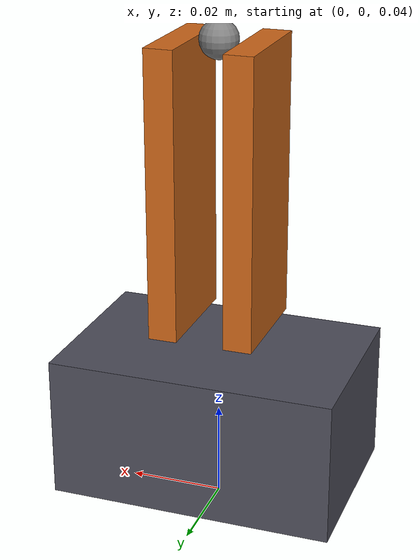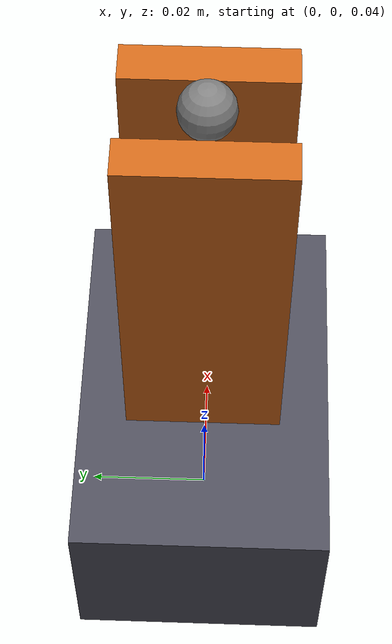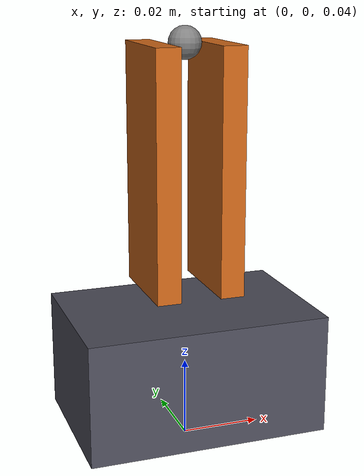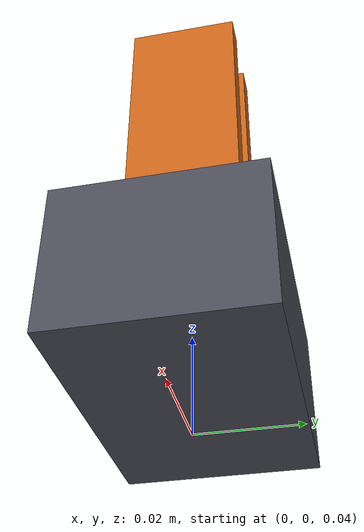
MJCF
<mujoco model="test_jaw">
  <compiler angle="radian"/>
  <worldbody>
    <body name="test_jaw">
      <inertial pos="0 0 0.06" mass="0.2" diaginertia="2e-4 2e-4 1e-4"/>
      <geom name="test_jaw_palm" type="box" size="0.03 0.02 0.015" pos="0 0 0.06"
            rgba="0.3 0.3 0.35 1"/>
      <site name="test_jaw_tcp" pos="0 0 0.14" size="0.004"/>
      <!-- Both ends of travel are hard stops (the pads never meet), so the
           normalised reading saturates exactly without leaning on a deadband. -->
      <body name="test_jaw_left" pos="0.005 0 0.11">
        <joint name="test_jaw_left" type="slide" axis="1 0 0" range="0 0.03"
               damping="5" armature="0.01"/>
        <geom type="box" size="0.003 0.012 0.03" pos="0.003 0 0" rgba="0.8 0.4 0.1 1"
              mass="0.05"/>
      </body>
      <body name="test_jaw_right" pos="-0.005 0 0.11">
        <joint name="test_jaw_right" type="slide" axis="-1 0 0" range="0 0.03"
               damping="5" armature="0.01"/>
        <geom type="box" size="0.003 0.012 0.03" pos="-0.003 0 0" rgba="0.8 0.4 0.1 1"
              mass="0.05"/>
      </body>
    </body>
  </worldbody>
  <equality>
    <joint joint1="test_jaw_right" joint2="test_jaw_left" polycoef="0 1 0 0 0"/>
  </equality>
  <actuator>
    <!-- ctrlrange overshoots the joint range at both ends: commanding an
         extreme drives the jaw into its stop. -->
    <position name="test_jaw_grip" joint="test_jaw_left" ctrlrange="-0.002 0.032" kp="80"
              dampratio="1"/>
  </actuator>
</mujoco>
